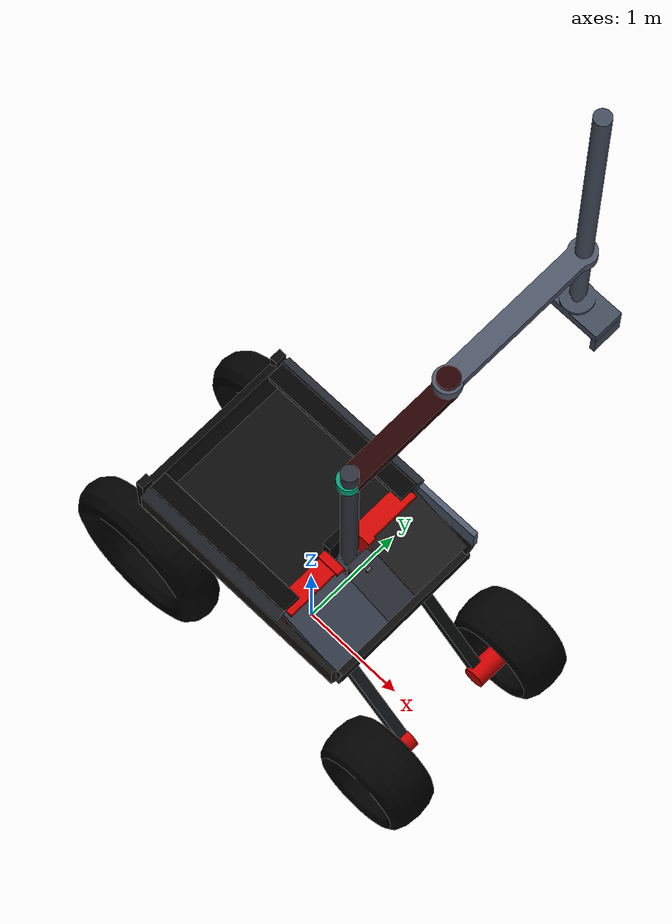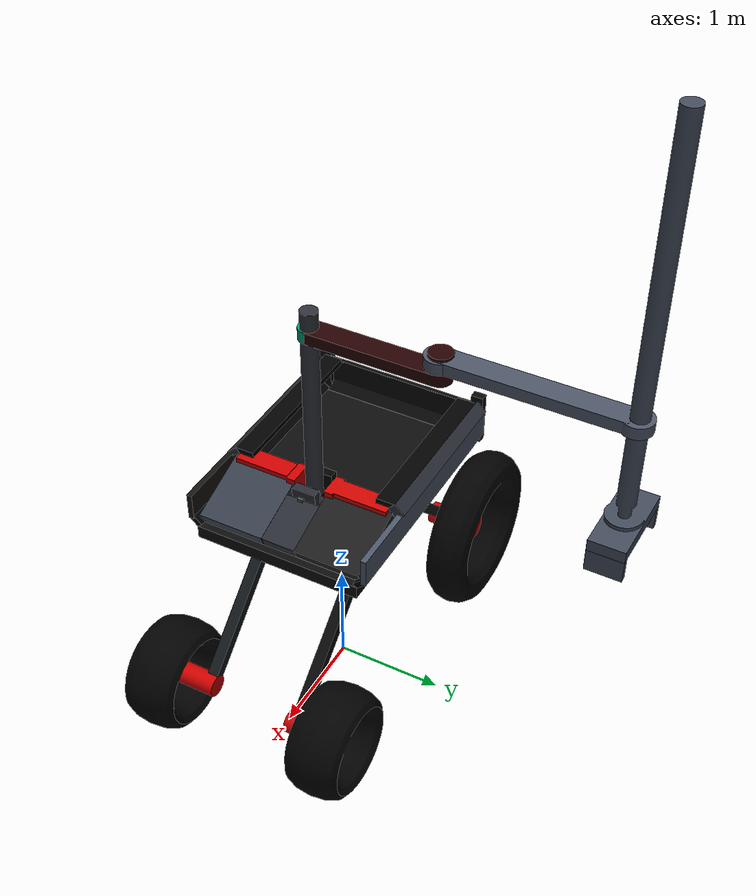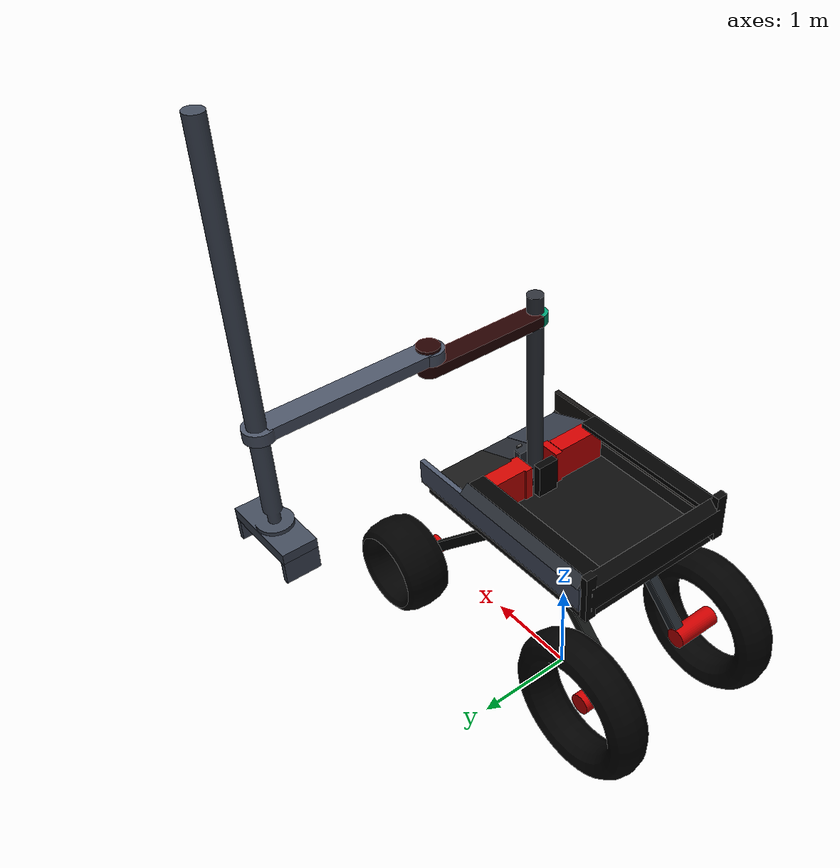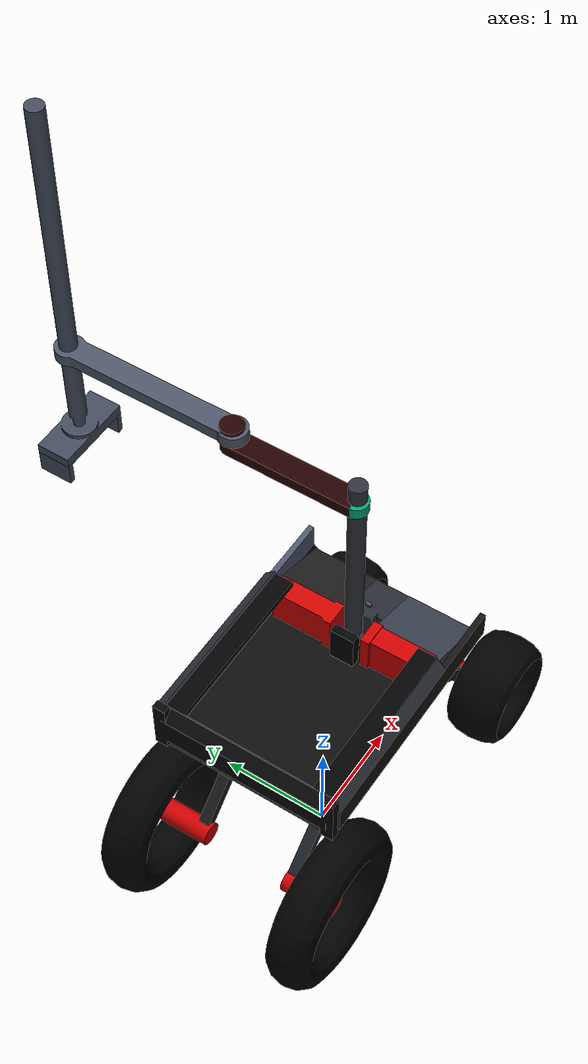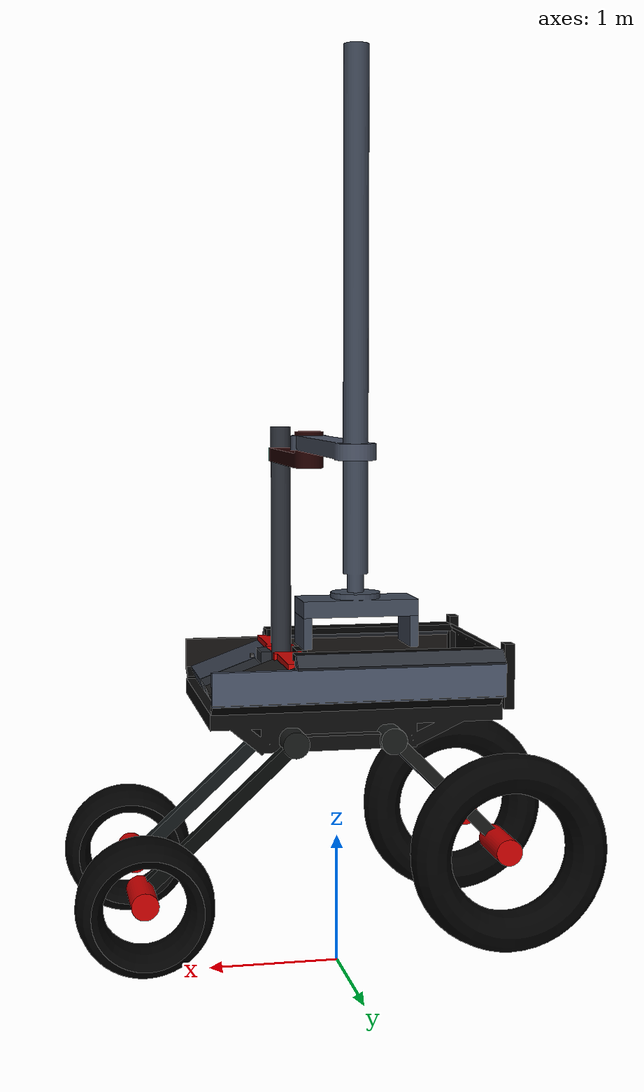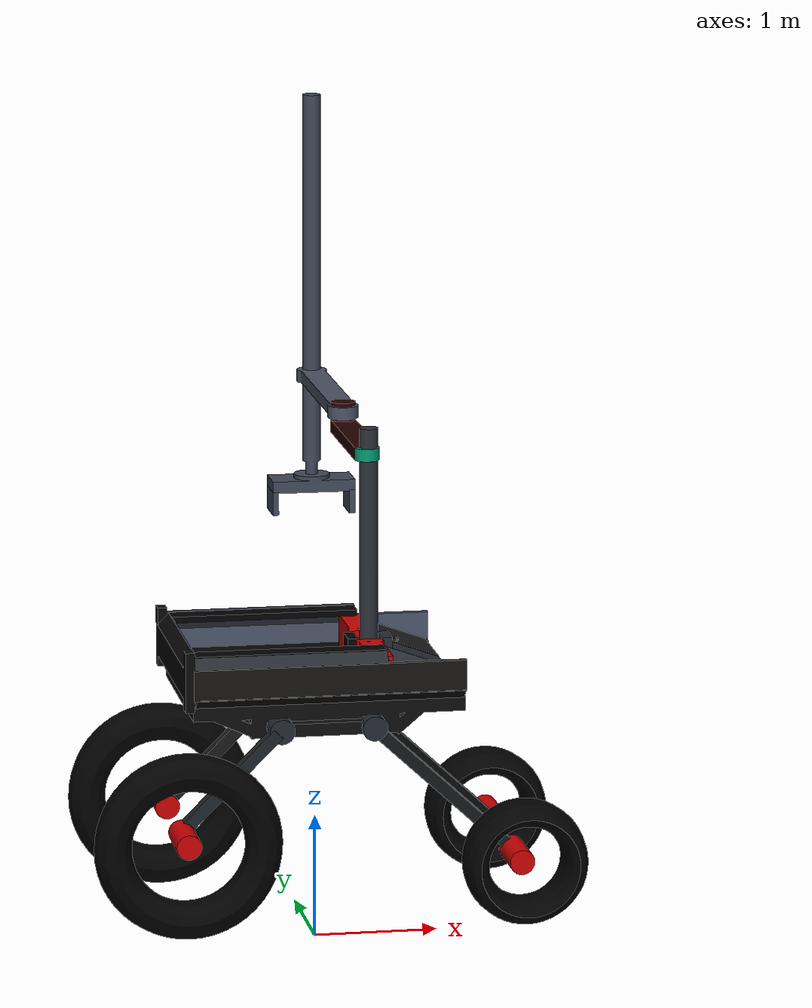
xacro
<?xml version="1.0"?>
<robot xmlns:xacro="http://wiki.ros.org/xacro" name="rover">
  <xacro:include filename="$(find rover_description)/urdf/utils/utils.urdf.xacro"/>
  <xacro:include filename="$(find rover_description)/urdf/base/robot_base.urdf.xacro"/>
  <xacro:include filename="$(find rover_description)/urdf/wheels/rover_wheel.urdf.xacro"/>
  <xacro:include filename="$(find rover_description)/urdf/arm/scara.urdf.xacro"/>
  <xacro:include filename="$(find rover_description)/urdf/arm/gripper.urdf.xacro"/>
  <xacro:include filename="$(find rover_description)/urdf/sensors/camera.urdf.xacro"/>
  <xacro:include filename="$(find rover_description)/urdf/sensors/imu_sensor.urdf.xacro"/>

  <xacro:fixed_joint name="base_link_joint" parent="base_footprint" child="base_link" xyz="0 0 2" rpy="0 0 0"/>

  <xacro:fixed_joint name="back_chasis_1.019_link_joint" parent="base_link" child="back_chasis_1.019_link" xyz="0.41154 -0.41350 0.29083" rpy="0 0 1.57080"/>
  <xacro:fixed_joint name="back_chasis_1.025_link_joint" parent="base_link" child="back_chasis_1.025_link" xyz="-0.00231 -0.78317 0.18416" rpy="-1.57080 0 0"/>
  <xacro:fixed_joint name="back_chasis_1.027_link_joint" parent="base_link" child="back_chasis_1.027_link" xyz="-0.01254 -0.81810 0.32496" rpy="-1.57080 0 0"/>
  <xacro:fixed_joint name="back_chasis_1.028_link_joint" parent="base_link" child="back_chasis_1.028_link" xyz="-0.01254 0.81734 0.32496" rpy="-1.57080 0 0"/>
  <xacro:fixed_joint name="back_chasis_1.029_link_joint" parent="base_link" child="back_chasis_1.029_link" xyz="-0.31611 0.78200 0.47226" rpy="-1.57080 0 0"/>
  <xacro:fixed_joint name="back_chasis_1.030_link_joint" parent="base_link" child="back_chasis_1.030_link" xyz="-0.32133 -0.78275 0.47226" rpy="-1.57080 0 0"/>
  <xacro:fixed_joint name="back_chasis_1.031_link_joint" parent="base_link" child="back_chasis_1.031_link" xyz="-0.31003 -0.66810 0.51437" rpy="-1.57080 0 0"/>
  <xacro:fixed_joint name="back_chasis_1.032_link_joint" parent="base_link" child="back_chasis_1.032_link" xyz="0.41154 0.40929 0.29083" rpy="0 0 1.57080"/>
  <xacro:fixed_joint name="back_chasis_1.033_link_joint" parent="base_link" child="back_chasis_1.033_link" xyz="0.71542 -0.45472 0.30081" rpy="0 0 1.57080"/>
  <xacro:fixed_joint name="back_chasis_1.038_link_joint" parent="base_link" child="back_chasis_1.038_link" xyz="0.28991 -0.00038 0.30081" rpy="0 0 1.57080"/>
  <xacro:fixed_joint name="back_chasis_1.040_link_joint" parent="base_link" child="back_chasis_1.040_link" xyz="0.76286 0.00589 0.27120" rpy="0 0 1.57080"/>
  <xacro:fixed_joint name="back_chasis_1.042_link_joint" parent="base_link" child="back_chasis_1.042_link" xyz="-0.00231 0.78208 0.18763" rpy="-1.57080 0 0"/>
  <xacro:fixed_joint name="back_chasis_1.043_link_joint" parent="base_link" child="back_chasis_1.043_link" xyz="-1.12965 0.00090 0.33524" rpy="-1.57080 0 -1.57080"/>
  <xacro:fixed_joint name="back_chasis_1.044_link_joint" parent="base_link" child="back_chasis_1.044_link" xyz="0.71542 0.45397 0.30081" rpy="0 0 1.57080"/>
  <xacro:fixed_joint name="back_chasis_1.047_link_joint" parent="base_link" child="back_chasis_1.047_link" xyz="-0.31003 0.67763 0.51437" rpy="-1.57080 0 0"/>

  <xacro:revolute_joint name="wheel_to_chasis.1_link_joint" parent="base_link" child="wheel_to_chasis.1_link" xyz="-0.33816 0.40233 -0.17000" rpy="-1.57080 0 0" lower="-0.17500" upper="0.17500" axis="0 0 1"/>
  <xacro:revolute_joint name="wheel_to_chasis.2_link_joint" parent="base_link" child="wheel_to_chasis.2_link" xyz="-0.33816 -0.38771 -0.17000" rpy="1.57080 0 0" lower="-0.17500" upper="0.17500" axis="0 0 -1"/>
  <xacro:revolute_joint name="wheel_to_chasis.3_link_joint" parent="base_link" child="wheel_to_chasis.3_link" xyz="0.40308 0.40233 -0.17000" rpy="-1.57080 0 0" lower="-0.17500" upper="0.17500" axis="0 0 -1"/>
  <xacro:revolute_joint name="wheel_to_chasis.4_link_joint" parent="base_link" child="wheel_to_chasis.4_link" xyz="0.40308 -0.50309 -0.17000" rpy="1.57080 0 0" lower="-0.17500" upper="0.17500" axis="0 0 1"/>

  <xacro:fixed_joint name="connect_wheel_left_back_link_joint" parent="wheel_to_chasis.1_link" child="connect_wheel_left_back_link" xyz="-0.42043 0.40259 0.03615" rpy="-3.14159 0 0"/>
  <xacro:fixed_joint name="connect_wheel_left_front_link_joint" parent="wheel_to_chasis.3_link" child="connect_wheel_left_front_link" xyz="0.58925 0.54876 0.03615" rpy="0 0 0"/>
  <xacro:fixed_joint name="connect_wheel_right_back_link_joint" parent="wheel_to_chasis.2_link" child="connect_wheel_right_back_link" xyz="-0.42043 -0.40259 0.05153" rpy="3.14159 0 0"/>
  <xacro:fixed_joint name="connect_wheel_right_front_link_joint" parent="wheel_to_chasis.4_link" child="connect_wheel_right_front_link" xyz="0.58925 -0.54876 -0.06385" rpy="3.14159 0 0"/>
  <xacro:fixed_joint name="wheel_center.1_link_joint" parent="connect_wheel_left_back_link" child="wheel_center.1_link" xyz="-0.38311 -0.40380 -0.14569" rpy="0 0 0"/>
  <xacro:fixed_joint name="wheel_center.2_link_joint" parent="connect_wheel_right_back_link" child="wheel_center.2_link" xyz="-0.38312 0.40380 -0.18878" rpy="0 0 0"/>
  <xacro:fixed_joint name="wheel_center.3_link_joint" parent="connect_wheel_left_front_link" child="wheel_center.3_link" xyz="0.56596 0.50762 0.14569" rpy="-3.14159 0 0"/>
  <xacro:fixed_joint name="wheel_center.4_link_joint" parent="connect_wheel_right_front_link" child="wheel_center.4_link" xyz="0.53743 0.50762 -0.18878" rpy="0 0 0"/>

  <xacro:sensor_camera node_name="front_camera" frame_prefix="front_camera" parent="back_chasis_1.040_link"
    xyz="-0.00265 0.10291 0.16222" rpy="0.00000 0.00000 -1.57080">
  </xacro:sensor_camera>

  <xacro:sensor_camera node_name="arm_camera" frame_prefix="arm_camera" parent="5mano_brazo_robotico_link"
    xyz="0.06322 0.00238 -0.01568" rpy="-3.14159 1.57080 -1.57080">
  </xacro:sensor_camera>

  <xacro:sensor_imu prefix="imu" parent="base_link"/>

  <!-- Gazebo ROS control plugins -->
  <xacro:include filename="$(find rover_description)/urdf/ros2_control.urdf.xacro"/>
  <xacro:arg name="config_controllers" default="$(find rover_description)/config/rover_controllers.yaml"/>
  <xacro:ros2_control config_controllers="$(arg config_controllers)"/>
</robot>

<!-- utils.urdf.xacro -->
<robot xmlns:xacro="http://wiki.ros.org/xacro" name="robot_base">

  <xacro:macro name="define_material" params="name rgba">
    <material name="${name}">
      <color rgba="${rgba}"/>
    </material>
  </xacro:macro>

  <xacro:define_material name="Material.001" rgba="0.00000 0.00000 0.00000 1.00000"/>
  <xacro:define_material name="Material.002" rgba="0.00000 0.00000 0.00000 1.00000"/>
  <xacro:define_material name="Material.003" rgba="0.00000 0.00000 0.00000 1.00000"/>
  <xacro:define_material name="Material.004" rgba="0.00000 0.00000 0.00000 1.00000"/>
  <xacro:define_material name="Material.005" rgba="0.02353 0.03137 0.02745 1.00000"/>
  <xacro:define_material name="Material.006" rgba="0.09020 0.09804 0.09412 1.00000"/>
  <xacro:define_material name="Material.007" rgba="0.08627 0.09804 0.09412 1.00000"/>
  <xacro:define_material name="Material.008" rgba="0.08627 0.09412 0.09020 1.00000"/>
  <xacro:define_material name="Material.009" rgba="0.80000 0.00000 0.00000 1.00000"/>
  <xacro:define_material name="Material.010" rgba="0.11373 0.14118 0.16471 1.00000"/>
  <xacro:define_material name="Material.011" rgba="0.14118 0.16471 0.19216 1.00000"/>
  <xacro:define_material name="Material.012" rgba="0.14118 0.16471 0.19216 1.00000"/>
  <xacro:define_material name="Material.013" rgba="0.06667 0.08627 0.09412 1.00000"/>
  <xacro:define_material name="Material.014" rgba="0.04314 0.04314 0.04314 1.00000"/>
  <xacro:define_material name="Material.015" rgba="0.00000 0.00000 0.00000 1.00000"/>
  <xacro:define_material name="Material.016" rgba="0.07843 0.07059 0.06275 1.00000"/>
  <xacro:define_material name="Material.017" rgba="0.00000 0.00000 0.00000 1.00000"/>
  <xacro:define_material name="Material.018" rgba="0.29412 0.33333 0.41176 1.00000"/>
  <xacro:define_material name="Material.019" rgba="0.00000 0.00000 0.00000 1.00000"/>
  <xacro:define_material name="Material.020" rgba="0.00000 0.00000 0.00000 1.00000"/>
  <xacro:define_material name="Material.021" rgba="0.16471 0.18039 0.21176 1.00000"/>
  <xacro:define_material name="Material.022" rgba="0.14510 0.16078 0.18431 1.00000"/>
  <xacro:define_material name="Material.023" rgba="0.02353 0.02353 0.02353 1.00000"/>
  <xacro:define_material name="Material.024" rgba="0.20784 0.23529 0.28627 1.00000"/>
  <xacro:define_material name="Material.025" rgba="0.10588 0.10588 0.10588 1.00000"/>
  <xacro:define_material name="Material.026" rgba="0.15294 0.16863 0.19608 1.00000"/>
  <xacro:define_material name="Material.027" rgba="0.17255 0.18824 0.21961 1.00000"/>
  <xacro:define_material name="Material.028" rgba="0.13725 0.00000 0.00000 1.00000"/>
  <xacro:define_material name="Material.029" rgba="0.29412 0.32549 0.39608 1.00000"/>
  <xacro:define_material name="Material.031" rgba="0.25098 0.28627 0.34902 1.00000"/>
  <xacro:define_material name="Material.032" rgba="0.80000 0.00392 0.00000 1.00000"/>
  <xacro:define_material name="Material.033" rgba="0.80000 0.00000 0.00000 1.00000"/>
  <xacro:define_material name="Material.034" rgba="0.80000 0.00000 0.00000 1.00000"/>
  <xacro:define_material name="Material.035" rgba="0.80000 0.00000 0.00000 1.00000"/>
  <xacro:define_material name="Material.036" rgba="0.80000 0.01569 0.00000 1.00000"/>
  <xacro:define_material name="Material.037" rgba="0.00000 0.00000 0.00000 1.00000"/>
  <xacro:define_material name="Material.039" rgba="0.25098 0.28627 0.34902 1.00000"/>

</robot>

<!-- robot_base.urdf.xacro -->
<robot xmlns:xacro="http://wiki.ros.org/xacro" name="robot_base">

  <xacro:macro name="fixed_joint" params="name parent child xyz rpy">
    <joint name="${name}" type="fixed">
      <origin xyz="${xyz}" rpy="${rpy}"/>
      <parent link="${parent}"/>
      <child link="${child}"/>
    </joint>
  </xacro:macro>

  <xacro:macro name="revolute_joint" params="name parent child xyz rpy lower upper axis">
    <joint name="${name}" type="revolute">
      <limit lower="${lower}" upper="${upper}" effort="1000.00000" velocity="10.00000"/>
      <origin xyz="${xyz}" rpy="${rpy}"/>
      <parent link="${parent}"/>
      <child link="${child}"/>
      <axis xyz="${axis}"/>
    </joint>
  </xacro:macro>

  <xacro:macro name="robot_link_collision" params="name mesh scale origin_xyz origin_rpy">
    <collision name="${name}_collision">
      <origin xyz="${origin_xyz}" rpy="${origin_rpy}"/>
      <geometry>
        <mesh filename="${mesh}" scale="${scale}"/>
      </geometry>
    </collision>
  </xacro:macro>

  <xacro:macro name="robot_link_inertial" params="mass ixx ixy ixz iyy iyz izz origin_xyz origin_rpy">
    <inertial>
      <origin xyz="${origin_xyz}" rpy="${origin_rpy}"/>
      <mass value="${mass}"/>
      <inertia
        ixx="${ixx}" ixy="${ixy}" ixz="${ixz}"
        iyy="${iyy}" iyz="${iyz}" izz="${izz}"/>
    </inertial>
  </xacro:macro>

  <xacro:macro name="robot_link_visual" params="name mesh scale material origin_xyz origin_rpy">
    <visual name="${name}_visual">
      <origin xyz="${origin_xyz}" rpy="${origin_rpy}"/>
      <material name="${material}"/>
      <geometry>
        <mesh filename="${mesh}" scale="${scale}"/>
      </geometry>
    </visual>
  </xacro:macro>

  <link name="base_footprint"/>

  <link name="back_chasis_1.019_link">
    <xacro:robot_link_collision name="back_chasis_1.019_link" mesh="package://rover_description/meshes/dae/Cylinder.053.dae" scale="0.1 0.1 0.1" origin_xyz="0 0 0" origin_rpy="-1.57080 0 -1.57080"/>
    <xacro:robot_link_inertial mass="2.0" ixx="0.09072" ixy="0.00000" ixz="0.00000" iyy="0.04165" iyz="0.00000" izz="0.06483" origin_xyz="0 0 0" origin_rpy="0 0 0"/>
    <xacro:robot_link_visual name="back_chasis_1.019_link" mesh="package://rover_description/meshes/dae/Cylinder.053.dae" scale="0.1 0.1 0.1" material="Material.035" origin_xyz="0 0 0" origin_rpy="-1.57080 0 -1.57080"/>
  </link>

  <link name="back_chasis_1.025_link">
    <xacro:robot_link_collision name="back_chasis_1.025_link" mesh="package://rover_description/meshes/dae/Cylinder.059.dae" scale="0.1 0.1 0.1" origin_xyz="0 0 0" origin_rpy="0 0 0"/>
    <xacro:robot_link_inertial mass="2.0" ixx="0.00497" ixy="0.00000" ixz="0.00000" iyy="0.76620" iyz="0.00000" izz="0.76634" origin_xyz="0 0 0" origin_rpy="0 0 0"/>
    <xacro:robot_link_visual name="back_chasis_1.025_link" mesh="package://rover_description/meshes/dae/Cylinder.059.dae" scale="0.1 0.1 0.1" material="Material.015" origin_xyz="0 0 0" origin_rpy="0 0 0"/>
  </link>

  <link name="back_chasis_1.027_link">
    <xacro:robot_link_collision name="back_chasis_1.027_link" mesh="package://rover_description/meshes/dae/Cylinder.061.dae" scale="0.1 0.1 0.1" origin_xyz="0 0 0" origin_rpy="0 0 0"/>
    <xacro:robot_link_inertial mass="2.0" ixx="0.01073" ixy="0.00000" ixz="0.00000" iyy="0.79330" iyz="-0.00000" izz="0.78340" origin_xyz="0 0 0" origin_rpy="0 0 0"/>
    <xacro:robot_link_visual name="back_chasis_1.027_link" mesh="package://rover_description/meshes/dae/Cylinder.061.dae" scale="0.1 0.1 0.1" material="Material.016" origin_xyz="0 0 0" origin_rpy="0 0 0"/>
  </link>

  <link name="back_chasis_1.028_link">
    <xacro:robot_link_collision name="back_chasis_1.028_link" mesh="package://rover_description/meshes/dae/Cylinder.062.dae" scale="0.1 0.1 0.1" origin_xyz="0 0 0" origin_rpy="0 0 0"/>
    <xacro:robot_link_inertial mass="2.0" ixx="0.01073" ixy="0.00000" ixz="0.00000" iyy="0.79330" iyz="-0.00000" izz="0.78340" origin_xyz="0 0 0" origin_rpy="0 0 0"/>
    <xacro:robot_link_visual name="back_chasis_1.028_link" mesh="package://rover_description/meshes/dae/Cylinder.062.dae" scale="0.1 0.1 0.1" material="Material.018" origin_xyz="0 0 0" origin_rpy="0 0 0"/>
  </link>

  <link name="back_chasis_1.029_link">
    <xacro:robot_link_collision name="back_chasis_1.029_link" mesh="package://rover_description/meshes/dae/Cylinder.063.dae" scale="0.1 0.1 0.1" origin_xyz="0 0 0" origin_rpy="0 0 0"/>
    <xacro:robot_link_inertial mass="2.0" ixx="0.00418" ixy="-0.00000" ixz="-0.00000" iyy="0.39770" iyz="0.00042" izz="0.39776" origin_xyz="0 0 0" origin_rpy="0 0 0"/>
    <xacro:robot_link_visual name="back_chasis_1.029_link" mesh="package://rover_description/meshes/dae/Cylinder.063.dae" scale="0.1 0.1 0.1" material="Material.021" origin_xyz="0 0 0" origin_rpy="0 0 0"/>
  </link>

  <link name="back_chasis_1.030_link">
    <xacro:robot_link_collision name="back_chasis_1.030_link" mesh="package://rover_description/meshes/dae/Cylinder.064.dae" scale="0.1 0.1 0.1" origin_xyz="0 0 0" origin_rpy="0 0 0"/>
    <xacro:robot_link_inertial mass="2.0" ixx="0.00293" ixy="-0.00000" ixz="0.00000" iyy="0.39666" iyz="-0.00105" izz="0.39680" origin_xyz="0 0 0" origin_rpy="0 0 0"/>
    <xacro:robot_link_visual name="back_chasis_1.030_link" mesh="package://rover_description/meshes/dae/Cylinder.064.dae" scale="0.1 0.1 0.1" material="Material.022" origin_xyz="0 0 0" origin_rpy="0 0 0"/>
  </link>

  <link name="back_chasis_1.031_link">
    <xacro:robot_link_collision name="back_chasis_1.031_link" mesh="package://rover_description/meshes/dae/Cylinder.065.dae" scale="0.1 0.1 0.1" origin_xyz="0 0 0" origin_rpy="0 0 0"/>
    <xacro:robot_link_inertial mass="2.0" ixx="0.00523" ixy="0.00000" ixz="0.00000" iyy="0.38416" iyz="0.00000" izz="0.38856" origin_xyz="0 0 0" origin_rpy="0 0 0"/>
    <xacro:robot_link_visual name="back_chasis_1.031_link" mesh="package://rover_description/meshes/dae/Cylinder.065.dae" scale="0.1 0.1 0.1" material="Material.019" origin_xyz="0 0 0" origin_rpy="0 0 0"/>
  </link>

  <link name="back_chasis_1.032_link">
    <xacro:robot_link_collision name="back_chasis_1.032_link" mesh="package://rover_description/meshes/dae/Cylinder.066.dae" scale="0.1 0.1 0.1" origin_xyz="0 0 0" origin_rpy="-1.57080 0 -1.57080"/>
    <xacro:robot_link_inertial mass="2.0" ixx="0.08815" ixy="0.00000" ixz="0.00000" iyy="0.04165" iyz="0.00000" izz="0.06225" origin_xyz="0 0 0" origin_rpy="0 0 0"/>
    <xacro:robot_link_visual name="back_chasis_1.032_link" mesh="package://rover_description/meshes/dae/Cylinder.066.dae" scale="0.1 0.1 0.1" material="Material.036" origin_xyz="0 0 0" origin_rpy="-1.57080 0 -1.57080"/>
  </link>

  <link name="back_chasis_1.033_link">
    <xacro:robot_link_collision name="back_chasis_1.033_link" mesh="package://rover_description/meshes/dae/Cylinder.067.dae" scale="0.1 0.1 0.1" origin_xyz="0 0 0" origin_rpy="-1.57080 0 -1.57080"/>
    <xacro:robot_link_inertial mass="2.0" ixx="0.06971" ixy="-0.00000" ixz="0.02210" iyy="0.07208" iyz="0.00000" izz="0.12237" origin_xyz="0 0 0" origin_rpy="0 0 0"/>
    <xacro:robot_link_visual name="back_chasis_1.033_link" mesh="package://rover_description/meshes/dae/Cylinder.067.dae" scale="0.1 0.1 0.1" material="Material.024" origin_xyz="0 0 0" origin_rpy="-1.57080 0 -1.57080"/>
  </link>

  <link name="back_chasis_1.038_link">
    <xacro:robot_link_collision name="back_chasis_1.038_link" mesh="package://rover_description/meshes/dae/Cylinder.072.dae" scale="0.1 0.1 0.1" origin_xyz="0 0 0" origin_rpy="-1.57080 0 -1.57080"/>
    <xacro:robot_link_inertial mass="2.0" ixx="0.02829" ixy="0.00000" ixz="0.00000" iyy="0.02148" iyz="-0.00000" izz="0.00894" origin_xyz="0 0 0" origin_rpy="0 0 0"/>
    <xacro:robot_link_visual name="back_chasis_1.038_link" mesh="package://rover_description/meshes/dae/Cylinder.072.dae" scale="0.1 0.1 0.1" material="Material.037" origin_xyz="0 0 0" origin_rpy="-1.57080 0 -1.57080"/>
  </link>

  <link name="back_chasis_1.040_link">
    <xacro:robot_link_collision name="back_chasis_1.040_link" mesh="package://rover_description/meshes/dae/Cylinder.074.dae" scale="0.1 0.1 0.1" origin_xyz="0 0 0" origin_rpy="-1.57080 0 -1.57080"/>
    <xacro:robot_link_inertial mass="2.0" ixx="0.05468" ixy="-0.00086" ixz="0.01157" iyy="0.05787" iyz="0.00013" izz="0.09404" origin_xyz="0 0 0" origin_rpy="0 0 0"/>
    <xacro:robot_link_visual name="back_chasis_1.040_link" mesh="package://rover_description/meshes/dae/Cylinder.074.dae" scale="0.1 0.1 0.1" material="Material.026" origin_xyz="0 0 0" origin_rpy="-1.57080 0 -1.57080"/>
  </link>

  <link name="back_chasis_1.042_link">
    <xacro:robot_link_collision name="back_chasis_1.042_link" mesh="package://rover_description/meshes/dae/Cylinder.076.dae" scale="0.1 0.1 0.1" origin_xyz="0 0 0" origin_rpy="0 0 0"/>
    <xacro:robot_link_inertial mass="2.0" ixx="0.00497" ixy="0.00000" ixz="0.00000" iyy="0.76764" iyz="0.00000" izz="0.76778" origin_xyz="0 0 0" origin_rpy="0 0 0"/>
    <xacro:robot_link_visual name="back_chasis_1.042_link" mesh="package://rover_description/meshes/dae/Cylinder.076.dae" scale="0.1 0.1 0.1" material="Material.017" origin_xyz="0 0 0" origin_rpy="0 0 0"/>
  </link>

  <link name="back_chasis_1.043_link">
    <xacro:robot_link_collision name="back_chasis_1.043_link" mesh="package://rover_description/meshes/dae/Cylinder.077.dae" scale="0.1 0.1 0.1" origin_xyz="0 0 0" origin_rpy="0 -1.57080 0"/>
    <xacro:robot_link_inertial mass="2.0" ixx="0.50923" ixy="-0.00003" ixz="-0.00014" iyy="0.02683" iyz="0.00031" izz="0.48447" origin_xyz="0 0 0" origin_rpy="0 0 0"/>
    <xacro:robot_link_visual name="back_chasis_1.043_link" mesh="package://rover_description/meshes/dae/Cylinder.077.dae" scale="0.1 0.1 0.1" material="Material.023" origin_xyz="0 0 0" origin_rpy="0 -1.57080 0"/>
  </link>

  <link name="back_chasis_1.044_link">
    <xacro:robot_link_collision name="back_chasis_1.044_link" mesh="package://rover_description/meshes/dae/Cylinder.078.dae" scale="0.1 0.1 0.1" origin_xyz="0 0 0" origin_rpy="-1.57080 0 -1.57080"/>
    <xacro:robot_link_inertial mass="2.0" ixx="0.06971" ixy="0.00000" ixz="0.02210" iyy="0.07208" iyz="0.00000" izz="0.12237" origin_xyz="0 0 0" origin_rpy="0 0 0"/>
    <xacro:robot_link_visual name="back_chasis_1.044_link" mesh="package://rover_description/meshes/dae/Cylinder.078.dae" scale="0.1 0.1 0.1" material="Material.025" origin_xyz="0 0 0" origin_rpy="-1.57080 0 -1.57080"/>
  </link>

  <link name="back_chasis_1.047_link">
    <xacro:robot_link_collision name="back_chasis_1.047_link" mesh="package://rover_description/meshes/dae/Cylinder.081.dae" scale="0.1 0.1 0.1" origin_xyz="0 0 0" origin_rpy="0 0 0"/>
    <xacro:robot_link_inertial mass="2.0" ixx="0.00523" ixy="0.00000" ixz="-0.00000" iyy="0.38416" iyz="0.00000" izz="0.38856" origin_xyz="0 0 0" origin_rpy="0 0 0"/>
    <xacro:robot_link_visual name="back_chasis_1.047_link" mesh="package://rover_description/meshes/dae/Cylinder.081.dae" scale="0.1 0.1 0.1" material="Material.020" origin_xyz="0 0 0" origin_rpy="0 0 0"/>
  </link>

  <link name="base_link">
    <xacro:robot_link_collision name="base_link" mesh="package://rover_description/meshes/dae/Cylinder.075.dae" scale="0.1 0.1 0.1" origin_xyz="0 0 0" origin_rpy="-1.57080 0 0"/>
    <xacro:robot_link_inertial mass="150.0" ixx="18.07067" ixy="0.00032" ixz="0.32867" iyy="46.41612" iyz="0.01418" izz="59.91762" origin_xyz="0 0 0" origin_rpy="0 0 0"/>
    <xacro:robot_link_visual name="base_link" mesh="package://rover_description/meshes/dae/Cylinder.075.dae" scale="0.1 0.1 0.1" material="Material.014" origin_xyz="0 0 0" origin_rpy="-1.57080 0 0"/>
  </link>

  <link name="connect_wheel_left_back_link">
    <xacro:robot_link_collision name="connect_wheel_left_back_link" mesh="package://rover_description/meshes/dae/Cylinder.039.dae" scale="0.1 0.1 0.1" origin_xyz="0 0 0" origin_rpy="3.14159 0 0"/>
    <xacro:robot_link_inertial mass="5.0" ixx="0.25833" ixy="-0.00000" ixz="-0.25000" iyy="0.50833" iyz="-0.00000" izz="0.25833" origin_xyz="0 0 0" origin_rpy="0 0 0"/>
    <xacro:robot_link_visual name="connect_wheel_left_back_link" mesh="package://rover_description/meshes/dae/Cylinder.039.dae" scale="0.1 0.1 0.1" material="Material.008" origin_xyz="0 0 0" origin_rpy="3.14159 0 0"/>
  </link>

  <link name="connect_wheel_left_front_link">
    <xacro:robot_link_collision name="connect_wheel_left_front_link" mesh="package://rover_description/meshes/dae/Cylinder.046.dae" scale="0.1 0.1 0.1" origin_xyz="0 0 0" origin_rpy="0 0 0"/>
    <xacro:robot_link_inertial mass="5.0" ixx="0.43920" ixy="0.00000" ixz="0.46529" iyy="0.94167" iyz="-0.00000" izz="0.51080" origin_xyz="0 0 0" origin_rpy="0 0 0"/>
    <xacro:robot_link_visual name="connect_wheel_left_front_link" mesh="package://rover_description/meshes/dae/Cylinder.046.dae" scale="0.1 0.1 0.1" material="Material.005" origin_xyz="0 0 0" origin_rpy="0 0 0"/>
  </link>

  <link name="connect_wheel_right_back_link">
    <xacro:robot_link_collision name="connect_wheel_right_back_link" mesh="package://rover_description/meshes/dae/Cylinder.056.dae" scale="0.1 0.1 0.1" origin_xyz="0 0 0" origin_rpy="0 0 0"/>
    <xacro:robot_link_inertial mass="5.0" ixx="0.25833" ixy="-0.00000" ixz="-0.25000" iyy="0.50833" iyz="-0.00000" izz="0.25833" origin_xyz="0 0 0" origin_rpy="0 0 0"/>
    <xacro:robot_link_visual name="connect_wheel_right_back_link" mesh="package://rover_description/meshes/dae/Cylinder.056.dae" scale="0.1 0.1 0.1" material="Material.010" origin_xyz="0 0 0" origin_rpy="0 0 0"/>
  </link>

  <link name="connect_wheel_right_front_link">
    <xacro:robot_link_collision name="connect_wheel_right_front_link" mesh="package://rover_description/meshes/dae/Cylinder.052.dae" scale="0.1 0.1 0.1" origin_xyz="0 0 0" origin_rpy="0 0 0"/>
    <xacro:robot_link_inertial mass="5.0" ixx="0.43920" ixy="0.00000" ixz="0.46529" iyy="0.94167" iyz="-0.00000" izz="0.51080" origin_xyz="0 0 0" origin_rpy="0 0 0"/>
    <xacro:robot_link_visual name="connect_wheel_right_front_link" mesh="package://rover_description/meshes/dae/Cylinder.052.dae" scale="0.1 0.1 0.1" material="Material.013" origin_xyz="0 0 0" origin_rpy="0 0 0"/>
  </link>

  <link name="wheel_center.1_link">
    <xacro:robot_link_collision name="wheel_center.1_link" mesh="package://rover_description/meshes/dae/Cylinder.041.dae" scale="0.1 0.1 0.1" origin_xyz="0 0 0" origin_rpy="3.14159 0 0"/>
    <xacro:robot_link_inertial mass="5.0" ixx="0.11695" ixy="-0.00000" ixz="-0.00000" iyy="0.02413" iyz="-0.00000" izz="0.11695" origin_xyz="0 0 0" origin_rpy="0 0 0"/>
    <xacro:robot_link_visual name="wheel_center.1_link" mesh="package://rover_description/meshes/dae/Cylinder.041.dae" scale="0.1 0.1 0.1" material="Material.033" origin_xyz="0 0 0" origin_rpy="3.14159 0 0"/>
  </link>

  <link name="wheel_center.2_link">
    <xacro:robot_link_collision name="wheel_center.2_link" mesh="package://rover_description/meshes/dae/Cylinder.044.dae" scale="0.1 0.1 0.1" origin_xyz="0 0 0" origin_rpy="0 0 0"/>
    <xacro:robot_link_inertial mass="10.0" ixx="0.00100" ixy="0.00000" ixz="0.00000" iyy="0.00100" iyz="0.00000" izz="0.00100" origin_xyz="0 0 0" origin_rpy="0 0 0"/>
    <xacro:robot_link_visual name="wheel_center.2_link" mesh="package://rover_description/meshes/dae/Cylinder.044.dae" scale="0.1 0.1 0.1" material="Material.034" origin_xyz="0 0 0" origin_rpy="0 0 0"/>
  </link>

  <link name="wheel_center.3_link">
    <xacro:robot_link_collision name="wheel_center.3_link" mesh="package://rover_description/meshes/dae/Cylinder.048.dae" scale="0.1 0.1 0.1" origin_xyz="0 0 0" origin_rpy="3.14159 0 0"/>
    <xacro:robot_link_inertial mass="5.0" ixx="0.11695" ixy="0.00000" ixz="0.00000" iyy="0.02413" iyz="0.00000" izz="0.11695" origin_xyz="0 0 0" origin_rpy="0 0 0"/>
    <xacro:robot_link_visual name="wheel_center.3_link" mesh="package://rover_description/meshes/dae/Cylinder.048.dae" scale="0.1 0.1 0.1" material="Material.009" origin_xyz="0 0 0" origin_rpy="3.14159 0 0"/>
  </link>

  <link name="wheel_center.4_link">
  <xacro:robot_link_collision name="wheel_center.4_link" mesh="package://rover_description/meshes/dae/Cylinder.049.dae" scale="0.1 0.1 0.1" origin_xyz="0 0 0" origin_rpy="0 0 0"/>
  <xacro:robot_link_inertial mass="5.0" ixx="0.11695" ixy="0.00000" ixz="-0.00000" iyy="0.02413" iyz="0.00000" izz="0.11695" origin_xyz="0 0 0" origin_rpy="0 0 0"/>
  <xacro:robot_link_visual name="wheel_center.4_link" mesh="package://rover_description/meshes/dae/Cylinder.049.dae" scale="0.1 0.1 0.1" material="Material.032" origin_xyz="0 0 0" origin_rpy="0 0 0"/>
</link>

<link name="wheel_to_chasis.1_link">
  <xacro:robot_link_collision name="wheel_to_chasis.1_link" mesh="package://rover_description/meshes/dae/Cylinder.040.dae" scale="0.1 0.1 0.1" origin_xyz="0 0 0" origin_rpy="0 0 0"/>
  <xacro:robot_link_inertial mass="5.0" ixx="0.02909" ixy="0.00000" ixz="-0.00000" iyy="0.02484" iyz="0.00000" izz="0.02909" origin_xyz="0 0 0" origin_rpy="0 0 0"/>
  <xacro:robot_link_visual name="wheel_to_chasis.1_link" mesh="package://rover_description/meshes/dae/Cylinder.040.dae" scale="0.1 0.1 0.1" material="Material.007" origin_xyz="0 0 0" origin_rpy="0 0 0"/>
</link>

<link name="wheel_to_chasis.2_link">
  <xacro:robot_link_collision name="wheel_to_chasis.2_link" mesh="package://rover_description/meshes/dae/Cylinder.055.dae" scale="0.1 0.1 0.1" origin_xyz="0 0 0" origin_rpy="3.14159 0 0"/>
  <xacro:robot_link_inertial mass="5.0" ixx="0.02909" ixy="0.00000" ixz="-0.00000" iyy="0.02484" iyz="0.00000" izz="0.02909" origin_xyz="0 0 0" origin_rpy="0 0 0"/>
  <xacro:robot_link_visual name="wheel_to_chasis.2_link" mesh="package://rover_description/meshes/dae/Cylinder.055.dae" scale="0.1 0.1 0.1" material="Material.011" origin_xyz="0 0 0" origin_rpy="3.14159 0 0"/>
</link>

<link name="wheel_to_chasis.3_link">
  <xacro:robot_link_collision name="wheel_to_chasis.3_link" mesh="package://rover_description/meshes/dae/Cylinder.045.dae" scale="0.1 0.1 0.1" origin_xyz="0 0 0" origin_rpy="0 0 0"/>
  <xacro:robot_link_inertial mass="5.0" ixx="0.02909" ixy="0.00000" ixz="-0.00000" iyy="0.02484" iyz="0.00000" izz="0.02909" origin_xyz="0 0 0" origin_rpy="0 0 0"/>
  <xacro:robot_link_visual name="wheel_to_chasis.3_link" mesh="package://rover_description/meshes/dae/Cylinder.045.dae" scale="0.1 0.1 0.1" material="Material.006" origin_xyz="0 0 0" origin_rpy="0 0 0"/>
</link>

<link name="wheel_to_chasis.4_link">
  <xacro:robot_link_collision name="wheel_to_chasis.4_link" mesh="package://rover_description/meshes/dae/Cylinder.058.dae" scale="0.1 0.1 0.1" origin_xyz="0 0 0" origin_rpy="3.14159 0 0"/>
  <xacro:robot_link_inertial mass="5.0" ixx="0.03464" ixy="-0.00000" ixz="-0.00000" iyy="0.02484" iyz="-0.00000" izz="0.03464" origin_xyz="0 0 -0.1" origin_rpy="0 0 0"/>
  <xacro:robot_link_visual name="wheel_to_chasis.4_link" mesh="package://rover_description/meshes/dae/Cylinder.058.dae" scale="0.1 0.1 0.1" material="Material.012" origin_xyz="0 0 0" origin_rpy="3.14159 0 0"/>
</link>

</robot>

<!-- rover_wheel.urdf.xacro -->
<robot xmlns:xacro="http://wiki.ros.org/xacro" name="rover_wheel">

  <xacro:macro name="continuous_joint" params="name parent child xyz rpy">
    <joint name="${name}" type="continuous">
      <origin xyz="${xyz}" rpy="${rpy}"/>
      <parent link="${parent}"/>
      <child link="${child}"/>
      <axis xyz="0.00000 0.00000 1.00000"/>
      <limit effort="2000" velocity="100"/>
      <dynamics damping="0.05" friction="0.1"/>
    </joint>
  </xacro:macro>

  <xacro:macro name="robot_link_collision" params="name mesh scale origin_xyz origin_rpy">
    <collision name="${name}_collision">
      <origin xyz="${origin_xyz}" rpy="${origin_rpy}"/>
      <geometry>
        <mesh filename="${mesh}" scale="${scale}"/>
      </geometry>
      <surface>
        <friction>
          <ode>
            <mu>1.000000</mu>
            <mu2>1.000000</mu2>
            <fdir1>0.000000 0.000000 1.000000</fdir1>
            <slip1>0.50000</slip1>
            <slip2>0.50000</slip2>
          </ode>
        </friction>
      </surface>
    </collision>
  </xacro:macro>

  <xacro:macro name="robot_link_transmission" params="name">
    <transmission name="${name}_wheel_joint_trans">
      <type>transmission_interface/SimpleTransmission</type>
      <joint name="${name}">
        <hardwareInterface>hardware_interface/VelocityJointInterface</hardwareInterface>
      </joint>
      <actuator name="${name}wheel_joint_motor">
        <mechanicalReduction>1</mechanicalReduction>
      </actuator>
    </transmission>
  </xacro:macro>

  <xacro:macro name="robot_link_inertial" params="mass ixx ixy ixz iyy iyz izz origin_xyz origin_rpy">
    <inertial>
      <origin xyz="${origin_xyz}" rpy="${origin_rpy}"/>
      <mass value="${mass}"/>
      <inertia
        ixx="${ixx}" ixy="${ixy}" ixz="${ixz}"
        iyy="${iyy}" iyz="${iyz}" izz="${izz}"/>
    </inertial>
  </xacro:macro>

  <xacro:macro name="robot_link_visual" params="name mesh scale material origin_xyz origin_rpy">
    <visual name="${name}_visual">
      <origin xyz="${origin_xyz}" rpy="${origin_rpy}"/>
      <material name="${material}"/>
      <geometry>
        <mesh filename="${mesh}" scale="${scale}"/>
      </geometry>
    </visual>
  </xacro:macro>

  <xacro:continuous_joint name="back_left_wheel_joint" parent="wheel_center.1_link" child="back_left_wheel_link" xyz="0.00000 -0.00000 -0.22269" rpy="3.14159 0.00000 0.00000"/>
  <xacro:continuous_joint name="back_right_wheel_joint" parent="wheel_center.2_link" child="back_right_wheel_link" xyz="0.00000 0.00000 -0.17236" rpy="-3.14159 0.00000 0.00000"/>
  <xacro:continuous_joint name="front_left_wheel_joint" parent="wheel_center.3_link" child="front_left_wheel_link" xyz="0.00000 -0.00000 -0.22269" rpy="3.14159 0.00000 0.00000"/>
  <xacro:continuous_joint name="front_right_wheel_joint" parent="wheel_center.4_link" child="front_right_wheel_link" xyz="0.02853 0.00000 -0.17236" rpy="-3.14159 0.00000 0.00000"/>

  <link name="back_left_wheel_link">
    <xacro:robot_link_collision name="back_left_wheel" mesh="package://rover_description/meshes/dae/Cylinder.038.dae" scale="0.10000 0.10000 0.10000" origin_xyz="-0.00000 -0.00000 -0.00000" origin_rpy="0.00000 0.00000 0.00000"/>
    <xacro:robot_link_inertial mass="10.00000" ixx="1.39644" ixy="-0.00000" ixz="-0.00000" iyy="2.63328" iyz="-0.00000" izz="1.39644" origin_xyz="-0.00000 -0.00000 -0.00000" origin_rpy="0.00000 0.00000 0.00000"/>
    <xacro:robot_link_visual name="back_left_wheel" mesh="package://rover_description/meshes/dae/Cylinder.038.dae" scale="0.10000 0.10000 0.10000" material="Material.004" origin_xyz="-0.00000 -0.00000 -0.00000" origin_rpy="0.00000 0.00000 0.00000"/>
    <xacro:robot_link_transmission name="back_left_wheel_joint"/>
  </link>

  <link name="back_right_wheel_link">
    <xacro:robot_link_collision name="back_right_wheel" mesh="package://rover_description/meshes/dae/Cylinder.037.dae" scale="0.10000 0.10000 0.10000" origin_xyz="-0.00000 0.00000 -0.00000" origin_rpy="3.14159 0.00000 0.00000"/>
    <xacro:robot_link_inertial mass="10.00000" ixx="1.39644" ixy="-0.00000" ixz="-0.00000" iyy="2.63328" iyz="-0.00000" izz="1.39644" origin_xyz="-0.00000 0.00000 0.00000" origin_rpy="0.00000 0.00000 0.00000"/>
    <xacro:robot_link_visual name="back_right_wheel" mesh="package://rover_description/meshes/dae/Cylinder.037.dae" scale="0.10000 0.10000 0.10000" material="Material.001" origin_xyz="-0.00000 0.00000 -0.00000" origin_rpy="3.14159 0.00000 0.00000"/>
    <xacro:robot_link_transmission name="back_right_wheel_joint"/>
  </link>

  <link name="front_left_wheel_link">
    <xacro:robot_link_collision name="front_left_wheel" mesh="package://rover_description/meshes/dae/Cylinder.036.dae" scale="0.10000 0.10000 0.10000" origin_xyz="-0.00000 0.00000 0.00000" origin_rpy="0.00000 0.00000 0.00000"/>
    <xacro:robot_link_inertial mass="10.00000" ixx="0.70986" ixy="0.00000" ixz="0.00000" iyy="1.17034" iyz="-0.00000" izz="0.70986" origin_xyz="-0.00000 0.00000 0.00000" origin_rpy="0.00000 0.00000 0.00000"/>
    <xacro:robot_link_visual name="front_left_wheel" mesh="package://rover_description/meshes/dae/Cylinder.036.dae" scale="0.10000 0.10000 0.10000" material="Material.003" origin_xyz="-0.00000 0.00000 -0.00000" origin_rpy="0.00000 0.00000 0.00000"/>
    <xacro:robot_link_transmission name="front_left_wheel_joint"/>
  </link>

  <link name="front_right_wheel_link">
    <xacro:robot_link_collision name="front_right_wheel" mesh="package://rover_description/meshes/dae/Cylinder.003.dae" scale="0.10000 0.10000 0.10000" origin_xyz="-0.00000 0.00000 -0.00000" origin_rpy="3.14159 0.00000 0.00000"/>
    <xacro:robot_link_inertial mass="10.00000" ixx="0.70986" ixy="0.00000" ixz="0.00000" iyy="1.17034" iyz="-0.00000" izz="0.70986" origin_xyz="-0.00000 0.00000 0.00000" origin_rpy="0.00000 0.00000 0.00000"/>
    <xacro:robot_link_visual name="front_right_wheel" mesh="package://rover_description/meshes/dae/Cylinder.003.dae" scale="0.10000 0.10000 0.10000" material="Material.002" origin_xyz="-0.00000 0.00000 -0.00000" origin_rpy="3.14159 0.00000 0.00000"/>
    <xacro:robot_link_transmission name="front_right_wheel_joint"/>
  </link>

</robot>

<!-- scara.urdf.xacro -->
<robot xmlns:xacro="http://www.ros.org/wiki/xacro" name="scara">

  <!-- Definición de macros -->
  <xacro:macro name="fixed_joint" params="name parent child xyz rpy">
    <joint name="${name}" type="fixed">
      <origin xyz="${xyz}" rpy="${rpy}"/>
      <parent link="${parent}"/>
      <child link="${child}"/>
    </joint>
  </xacro:macro>

  <xacro:macro name="revolute_joint" params="name parent child xyz rpy lower upper axis">
    <joint name="${name}" type="revolute">
      <origin xyz="${xyz}" rpy="${rpy}"/>
      <limit lower="${lower}" upper="${upper}" effort="1000.0" velocity="10.0"/>
      <axis xyz="${axis}"/>
      <parent link="${parent}"/>
      <child link="${child}"/>
    </joint>
  </xacro:macro>

  <xacro:macro name="prismatic_joint" params="name parent child xyz rpy lower upper axis">
    <joint name="${name}" type="prismatic">
      <origin xyz="${xyz}" rpy="${rpy}"/>
      <limit lower="${lower}" upper="${upper}" effort="1000.0" velocity="10.0"/>
      <axis xyz="${axis}"/>
      <parent link="${parent}"/>
      <child link="${child}"/>
    </joint>
  </xacro:macro>

  <xacro:macro name="robot_link_collision" params="name mesh scale origin_xyz origin_rpy">
    <collision name="${name}_collision">
      <origin xyz="${origin_xyz}" rpy="${origin_rpy}"/>
      <geometry>
        <mesh filename="${mesh}" scale="${scale}"/>
      </geometry>
    </collision>
  </xacro:macro>

  <xacro:macro name="robot_link_inertial" params="mass ixx ixy ixz iyy iyz izz origin_xyz origin_rpy">
    <inertial>
      <origin xyz="${origin_xyz}" rpy="${origin_rpy}"/>
      <mass value="${mass}"/>
      <inertia ixx="${ixx}" ixy="${ixy}" ixz="${ixz}" iyy="${iyy}" iyz="${iyz}" izz="${izz}"/>
    </inertial>
  </xacro:macro>

  <xacro:macro name="robot_link_visual" params="name mesh scale material origin_xyz origin_rpy">
    <visual name="${name}_visual">
      <origin xyz="${origin_xyz}" rpy="${origin_rpy}"/>
      <material name="${material}"/>
      <geometry>
        <mesh filename="${mesh}" scale="${scale}"/>
      </geometry>
    </visual>
  </xacro:macro>

  <xacro:fixed_joint name="1brazo_robotico_link_joint" parent="base_link" child="1brazo_robotico_link" xyz="0.43472 0.00627 1.21671" rpy="0 0 0"/>
  <xacro:revolute_joint name="2_1brazo_robotico_link_joint" parent="1brazo_robotico_link" child="2_1brazo_robotico_link" xyz="-0.01317 0.00014 0.73900" rpy="0 0 1.57080" lower="-3.14" upper="3.14" axis="0 0 1"/>
  <xacro:fixed_joint name="2_2brazo_robotico_link_joint" parent="2_1brazo_robotico_link" child="2_2brazo_robotico_link" xyz="0.69766 0.0 0.02036" rpy="0 0 0"/>
  <xacro:revolute_joint name="3_1brazo_robotico_link_joint" parent="2_2brazo_robotico_link" child="3_1brazo_robotico_link" xyz="0.39748 0.0 0.10262" rpy="0 0 0" lower="-3.0" upper="3.0" axis="0 0 1"/>
  <xacro:fixed_joint name="3_2brazo_robotico_link_joint" parent="3_1brazo_robotico_link" child="3_2brazo_robotico_link" xyz="0.84806 0.0 0.00173" rpy="0 0 0"/>
  <xacro:prismatic_joint name="5brazo_robotico_link_joint" parent="3_2brazo_robotico_link" child="5brazo_robotico_link" xyz="0.68762 0.0 0.0" rpy="0 0 0" lower="-2.2" upper="0.6" axis="0 0 1"/>
  <xacro:revolute_joint name="5mano_brazo_robotico_link_joint" parent="5brazo_robotico_link" child="5mano_brazo_robotico_link" xyz="0.00362 0.00261 -0.92883" rpy="0 0 0" lower="-3.14" upper="3.14" axis="0 0 1"/>

  <link name="1brazo_robotico_link">
    <xacro:robot_link_collision name="1brazo_robotico" mesh="package://rover_description/meshes/dae/Cylinder.002.dae" scale="0.07500 0.07500 0.90000" origin_xyz="0.00000 -0.00000 -0.04592" origin_rpy="0.00000 0.00000 0.00000"/>
    <xacro:robot_link_inertial mass="15.00000" ixx="7.83910" ixy="-0.00002" ixz="-0.00435" iyy="7.83905" iyz="-0.01584" izz="0.04076" origin_xyz="-0.00017 -0.00026 -0.07143" origin_rpy="0.00000 0.00000 0.00000"/>
    <xacro:robot_link_visual name="1brazo_robotico" mesh="package://rover_description/meshes/dae/Cylinder.002.dae" scale="0.07500 0.07500 0.90000" material="Material.027" origin_xyz="0.00000 -0.00000 -0.00000" origin_rpy="0.00000 0.00000 0.00000"/>
  </link>

  <link name="2_1brazo_robotico_link">
    <collision name="2_1brazo_robotico_collision">
      <origin xyz="0.00000 0.00000 0.00000" rpy="0.00000 0.00000 0.00000"/>
      <geometry>
        <cylinder radius="0.10000" length="0.10000"/>
      </geometry>
    </collision>
    <xacro:robot_link_inertial mass="0.50000" ixx="0.00167" ixy="0.00000" ixz="0.00000" iyy="0.00167" iyz="0.00000" izz="0.00250" origin_xyz="0.00000 0.00000 0.00000" origin_rpy="0.00000 0.00000 0.00000"/>
    <visual name="2_1brazo_robotico">
      <origin xyz="0.00000 0.00000 0.00000" rpy="0.00000 0.00000 0.00000"/>
      <geometry>
        <cylinder radius="0.10000" length="0.10000"/>
      </geometry>
    </visual>
  </link>

  <link name="2_2brazo_robotico_link">
    <xacro:robot_link_collision name="2_2brazo_robotico" mesh="package://rover_description/meshes/dae/Cylinder.004.dae" scale="0.10000 0.10000 0.05000" origin_xyz="0 0 0" origin_rpy="0 0 0"/>
    <xacro:robot_link_visual name="2_2brazo_robotico" mesh="package://rover_description/meshes/dae/Cylinder.004.dae" scale="0.10000 0.10000 0.05000" material="Material.028" origin_xyz="0 0 0" origin_rpy="0 0 0"/>
    <xacro:robot_link_inertial mass="1.00000" ixx="0.00795" ixy="0.00000" ixz="-0.02279" iyy="0.25227" iyz="0.00000" izz="0.25036" origin_xyz="0 0 0" origin_rpy="0 0 0"/>
  </link>

  <link name="3_1brazo_robotico_link">
    <xacro:robot_link_collision name="3_1brazo_robotico" mesh="package://rover_description/meshes/dae/Cylinder.014.dae" scale="0.12500 0.12500 0.05000" origin_xyz="0 0 0" origin_rpy="0 0 0"/>
    <xacro:robot_link_visual name="3_1brazo_robotico" mesh="package://rover_description/meshes/dae/Cylinder.014.dae" scale="0.12500 0.12500 0.05000" material="Material.029" origin_xyz="0 0 0" origin_rpy="0 0 0"/>
    <xacro:robot_link_inertial mass="0.50000" ixx="0.00237" ixy="0.00000" ixz="0.00000" iyy="0.00237" iyz="0.00000" izz="0.00391" origin_xyz="0 0 0" origin_rpy="0 0 0"/>
  </link>

  <link name="3_2brazo_robotico_link">
    <xacro:robot_link_collision name="3_2brazo_robotico" mesh="package://rover_description/meshes/dae/Cylinder.006.dae" scale="0.12500 0.12500 0.05000" origin_xyz="0 0 0" origin_rpy="0 0 0"/>
    <xacro:robot_link_visual name="3_2brazo_robotico" mesh="package://rover_description/meshes/dae/Cylinder.006.dae" scale="0.12500 0.12500 0.05000" material="Material.029" origin_xyz="0 0 0" origin_rpy="0 0 0"/>
    <xacro:robot_link_inertial mass="1.50000" ixx="0.00637" ixy="-0.00000" ixz="0.00162" iyy="0.87483" iyz="-0.00000" izz="0.87869" origin_xyz="0 0 0" origin_rpy="0 0 0"/>
  </link>

  <link name="5brazo_robotico_link">
    <xacro:robot_link_collision name="5brazo_robotico" mesh="package://rover_description/meshes/dae/Cylinder.009.dae" scale="0.07500 0.07500 1.55000" origin_xyz="0 0 0.77264" origin_rpy="0 0 0"/>
    <xacro:robot_link_visual name="5brazo_robotico" mesh="package://rover_description/meshes/dae/Cylinder.009.dae" scale="0.07500 0.07500 1.55000" material="Material.031" origin_xyz="0 0 0.77264" origin_rpy="0 0 0"/>
    <xacro:robot_link_inertial mass="1.00000" ixx="1.32333" ixy="-0.00000" ixz="0.00000" iyy="1.32333" iyz="0.00000" izz="0.00263" origin_xyz="0 0 0.77264" origin_rpy="0 0 0"/>
  </link>

  <link name="5mano_brazo_robotico_link">
    <xacro:robot_link_collision name="5mano_brazo_robotico" mesh="package://rover_description/meshes/dae/Cylinder.011.dae" scale="0.07500 0.07500 1.55000" origin_xyz="0 0 0.00840" origin_rpy="0 0 0"/>
    <xacro:robot_link_visual name="5mano_brazo_robotico" mesh="package://rover_description/meshes/dae/Cylinder.011.dae" scale="0.07500 0.07500 1.55000" material="Material.031" origin_xyz="0 0 0.00840" origin_rpy="0 0 0"/>
    <xacro:robot_link_inertial mass="0.50000" ixx="0.01935" ixy="0.00001" ixz="0.00012" iyy="0.00509" iyz="-0.00004" izz="0.02149" origin_xyz="0 0 0.00840" origin_rpy="0 0 0"/>
  </link>

</robot>

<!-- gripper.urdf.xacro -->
<robot xmlns:xacro="http://wiki.ros.org/xacro" name="gripper">

  <xacro:macro name="gripper_finger_joint" params="name parent child rpy xyz">
    <joint name="${name}" type="prismatic">
      <limit lower="-0.5" upper="0.07" effort="3000.00000" velocity="10.00000"/>
      <origin rpy="${rpy}" xyz="${xyz}"/>
      <parent link="${parent}"/>
      <child link="${child}"/>
      <axis xyz="0.00000 0.00000 1.00000"/>
    </joint>
  </xacro:macro>

  <xacro:macro name="gripper_finger_link" params="name visual_rpy material mesh_file mesh_scale">
    <link name="${name}">
      <collision name="${name}_collision">
        <origin rpy="${visual_rpy}" xyz="0.00000 0.00000 0.00000"/>
        <geometry>
          <mesh filename="${mesh_file}" scale="${mesh_scale}"/>
        </geometry>
      </collision>
      <inertial>
        <origin rpy="0.00000 0.00000 0.00000" xyz="0.00000 0.00000 0.00000"/>
        <mass value="0.50000"/>
        <inertia ixx="0.00177" ixy="0.00000" ixz="0.00000" iyy="0.00542" iyz="0.00000" izz="0.00385"/>
      </inertial>
      <visual name="${name}">
        <origin rpy="${visual_rpy}" xyz="0.00000 0.00000 0.00000"/>
        <material name="${material}"/>
        <geometry>
          <box size="0.30000 0.05000 0.20000"/>
        </geometry>
      </visual>
    </link>
  </xacro:macro>

  <xacro:gripper_finger_joint
    name="5mano_izquierda_brazo_robotico_link_joint"
    parent="5mano_brazo_robotico_link"
    child="5mano_izquierda_brazo_robotico_link"
    rpy="1.57080 0.00000 0.00000"
    xyz="0.00060 0.32554 -0.13796" />

  <xacro:gripper_finger_joint
    name="5mano_derecha_brazo_robotico_link_joint"
    parent="5mano_brazo_robotico_link"
    child="5mano_derecha_brazo_robotico_link"
    rpy="-1.57080 0.00000 0.00000"
    xyz="0.00060 -0.32419 -0.13860" />

  <xacro:gripper_finger_link
    name="5mano_derecha_brazo_robotico_link"
    visual_rpy="1.57080 0.00000 0.00000"
    material="Material.031"
    mesh_file="package://rover_description/meshes/dae/Cylinder.001.dae"
    mesh_scale="0.07500 0.07500 1.55000" />

  <xacro:gripper_finger_link
    name="5mano_izquierda_brazo_robotico_link"
    visual_rpy="-1.57080 0.00000 0.00000"
    material="Material.039"
    mesh_file="package://rover_description/meshes/dae/Cylinder.013.dae"
    mesh_scale="0.07500 0.07500 1.55000" />

</robot>

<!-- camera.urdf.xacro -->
<robot xmlns:xacro="http://wiki.ros.org/xacro" name="camera">
  <!-- # LO QUE EL TIENE -->
  <xacro:macro name="sensor_camera_generic"
               params="frame_prefix
               parent
               node_name:=camera
               topic_prefix:=~/
               horizontal_fov:=80
               vertical_fov:=60
               video_width:=1280
               video_height:=720
               video_fps:=30
               xyz
               rpy">

      <joint name="${frame_prefix}_base_joint" type="fixed">
          <origin xyz="${xyz}" rpy="${rpy}"/>
          <parent link="${parent}"/>
          <child link="${frame_prefix}_base_link" />
      </joint>

      <link name="${frame_prefix}_base_link">
        <visual>
            <origin xyz="0 0 0" rpy="0 0 0"/>
            <geometry>
                <box size="0.025 0.05 0.025"/>
            </geometry>
            <material name="light_grey">
                <color rgba="0.35 0.35 0.35 1"/>
            </material>
        </visual>
        <collision>
            <origin xyz="0 0 0" rpy="0 0 0" />
            <geometry>
                <box size="0.025 0.05 0.025"/>
            </geometry>
        </collision>
        </link>

        <joint name="${frame_prefix}_joint" type="fixed">
            <origin xyz="0 0 0" rpy="0 0 0"/>
            <parent link="${frame_prefix}_base_link"/>
            <child link="${frame_prefix}_frame" />
        </joint>

        <link name="${frame_prefix}_frame"/>

        <joint name="${frame_prefix}color_optical_joint" type="fixed">
            <origin xyz="0 0 0" rpy="-1.5708 0 -1.5708"/>
            <parent link="${frame_prefix}_frame"/>
            <child link="${frame_prefix}_optical_frame" />
        </joint>

        <link name="${frame_prefix}_optical_frame" />

        <gazebo reference="${frame_prefix}_frame">
            <sensor name="${frame_prefix}_sensor" type="camera">
                <visualize>true</visualize>
                <update_rate>30</update_rate>
                <topic>/${frame_prefix}/image</topic>
                <camera>
                    <horizontal_fov>${radians(float(horizontal_fov))}</horizontal_fov>
                    <image>
                        <width>${video_width}</width>
                        <height>${video_height}</height>
                        <format>R8G8B8</format>
                    </image>
                    <clip>
                        <near>0.10</near>
                        <far>15.0</far>
                    </clip>
                    <noise>
                        <type>gaussian</type>
                        <mean>0.0</mean>
                        <stddev>0.007</stddev>
                    </noise>
                    <optical_frame_id>${frame_prefix}_optical_frame</optical_frame_id>
                </camera>
            </sensor>
        </gazebo>
    </xacro:macro>

    <xacro:macro name="sensor_camera"
                 params="frame_prefix
                        parent
                         xyz
                         rpy
                         node_name
                         topic_prefix:=~/">
        <xacro:sensor_camera_generic frame_prefix="${frame_prefix}"
                                    parent="${parent}"
                                    node_name="${node_name}"
                                    topic_prefix="${topic_prefix}"
                                    horizontal_fov="110"
                                    vertical_fov="70"
                                    video_width="1920"
                                    video_height="1080"
                                    video_fps="30"
                                    xyz="${xyz}"
                                    rpy="${rpy}">

        </xacro:sensor_camera_generic>
    </xacro:macro>
</robot>

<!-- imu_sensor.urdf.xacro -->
<robot xmlns:xacro="http://wiki.ros.org/xacro" name="imu_sensor">
<!-- Lo que el ha puesto -->
  <xacro:macro name="sensor_imu" params="prefix topic:='imu/data' parent">
    <joint name="${prefix}_joint" type="fixed">
      <parent link="${parent}"/>
      <child link="${prefix}_link"/>
      <origin xyz="0 0 0"/>
    </joint>

    <link name="${prefix}_link">
      <visual>
        <origin rpy="0 0 0" xyz="0 0 0" />
        <geometry>
          <box size="0.001 0.001 0.001" />
        </geometry>
      </visual>
      <collision>
        <origin xyz="0 0 0" rpy="0 0 0"/>
        <geometry>
          <box size="0.001 0.001 0.001"/>
        </geometry>
      </collision>
      <inertial>
        <mass value="0.001"/>
        <origin xyz="0 0 0" rpy="0 0 0"/>
        <inertia ixx="1e-6" ixy="0" ixz="0" iyy="1e-6" iyz="0" izz="1e-6"/>
      </inertial>
    </link>

    <gazebo reference="${prefix}_link">
      <sensor name="${prefix}_sensor" type="imu">
        <always_on>true</always_on>
        <update_rate>30</update_rate>
        <topic>${topic}</topic>
      </sensor>
    </gazebo>
  </xacro:macro>

</robot>
